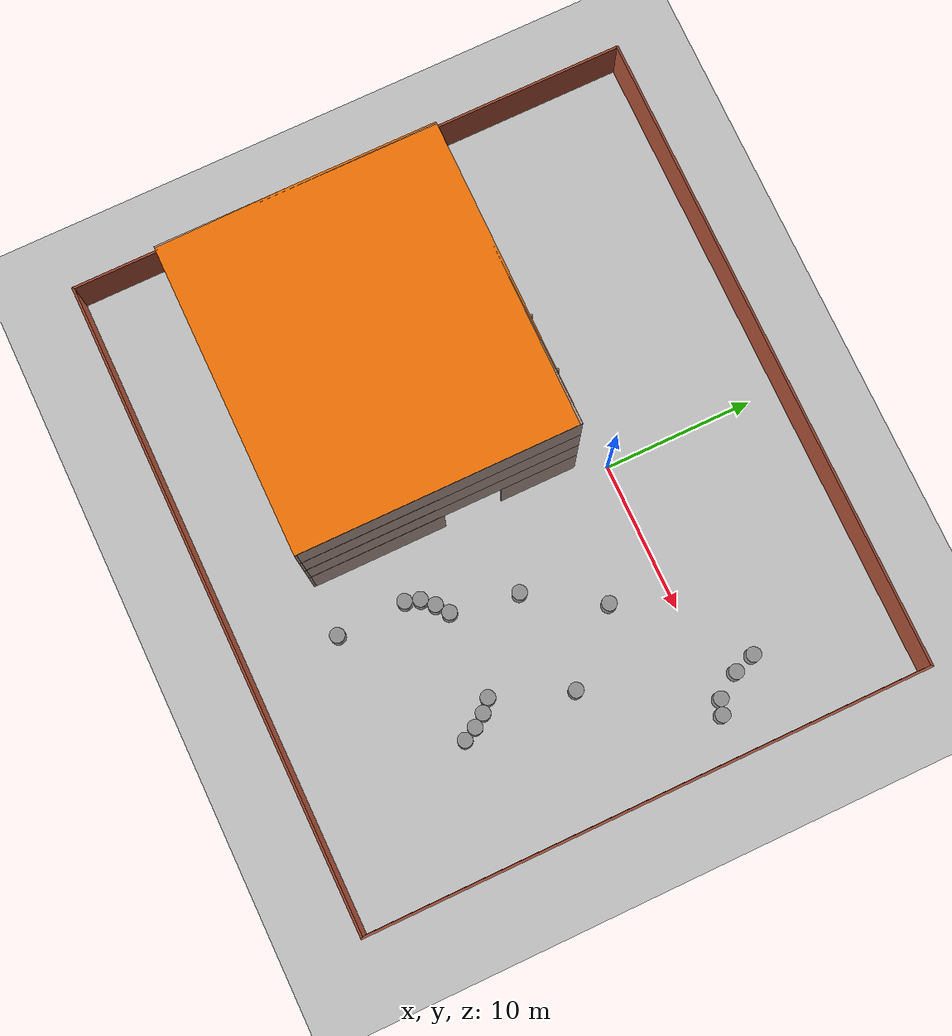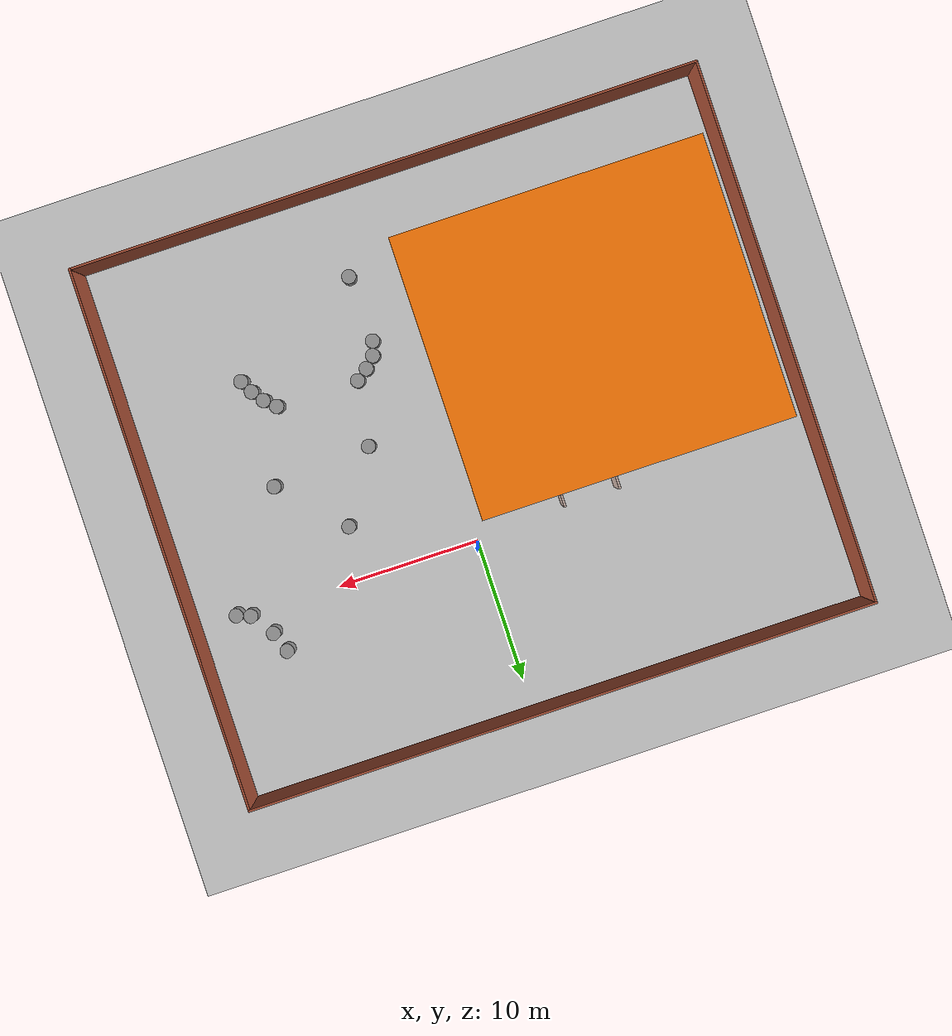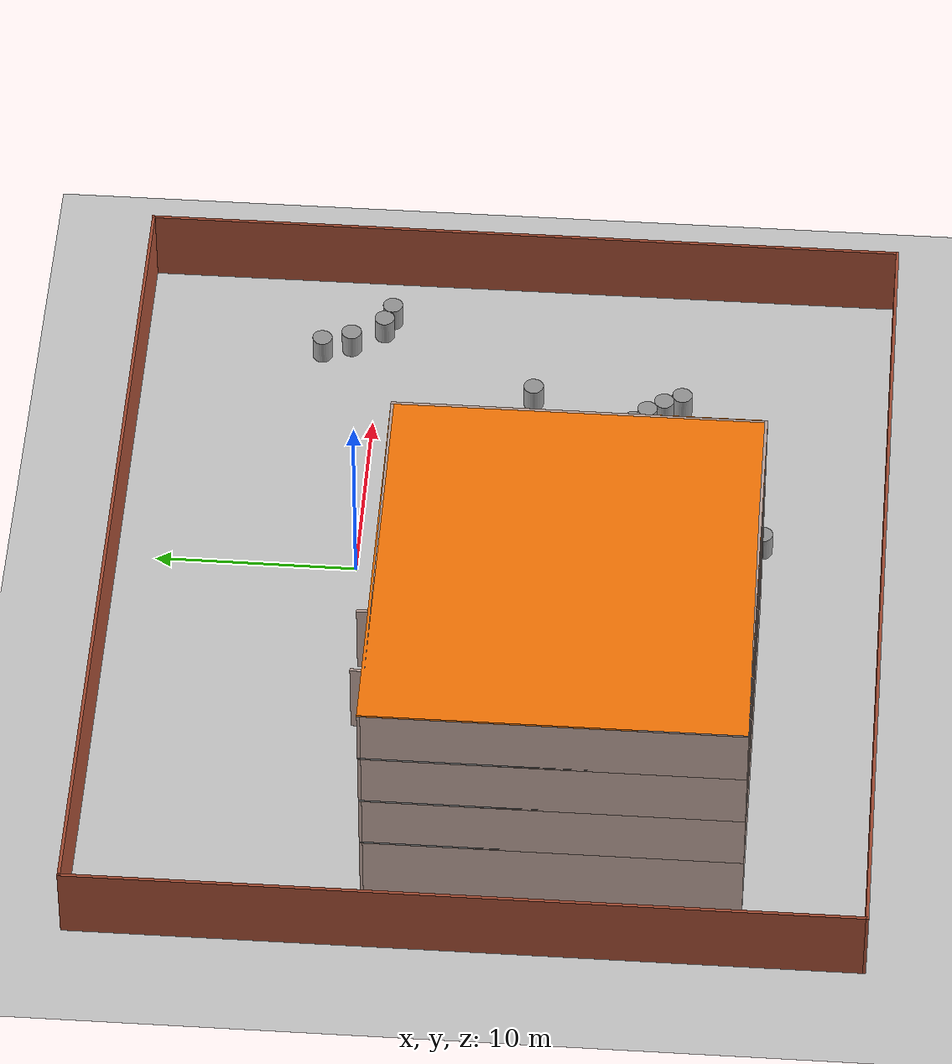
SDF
<sdf version="1.6">
 <world name="default">
  <light name="sun" type="directional">
   <pose>0 0 10 0 -0 0</pose>
   <diffuse>0.8 0.8 0.8 1</diffuse>
   <specular>0.2 0.2 0.2 1</specular>
   <attenuation>
    <range>1000</range>
    <constant>0.9</constant>
    <linear>0.01</linear>
    <quadratic>0.001</quadratic>
   </attenuation>
   <direction>-0.5 0.1 -0.9</direction>
  </light>
  <model name="ground_plane">
   <static>1</static>
   <link name="link">
    <collision name="collision">
     <geometry><plane><normal>0 0 1</normal><size>100 100</size></plane></geometry>
     <surface><friction><ode><mu>100</mu><mu2>50</mu2></ode></friction></surface>
    </collision>
    <visual name="visual">
     <cast_shadows>0</cast_shadows>
     <geometry><plane><normal>0 0 1</normal><size>100 100</size></plane></geometry>
     <material>
      <script><uri>file://media/materials/scripts/gazebo.material</uri><name>Gazebo/Grey</name></script>
     </material>
    </visual>
   </link>
  </model>
  <gravity>0 0 -9.8</gravity>
  <magnetic_field>6e-06 2.3e-05 -4.2e-05</magnetic_field>
  <atmosphere type="adiabatic"/>
  <physics name="default_physics" default="0" type="ode">
   <max_step_size>0.001</max_step_size>
   <real_time_factor>1</real_time_factor>
   <real_time_update_rate>1000</real_time_update_rate>
  </physics>
  <scene><ambient>0.4 0.4 0.4 1</ambient><background>0.7 0.7 0.7 1</background><shadows>1</shadows></scene>
  <audio><device>default</device></audio>
  <spherical_coordinates>
   <surface_model>EARTH_WGS84</surface_model>
   <latitude_deg>0</latitude_deg>
   <longitude_deg>0</longitude_deg>
   <elevation>0</elevation>
   <heading_deg>0</heading_deg>
  </spherical_coordinates>
  <model name="building2">
   <pose>-11 -10.325 0 0 -0 0</pose>
   <link name="Floor_0">
    <collision name="Floor_0_Collision">
     <geometry><box><size>20.15 18.15 0.1</size></box></geometry>
     <pose>0 0 0.05 0 -0 0</pose>
    </collision>
    <visual name="Floor_0_Visual">
     <pose>0 0 0.05 0 -0 0</pose>
     <geometry><box><size>20.15 18.15 0.1</size></box></geometry>
     <material>
      <script><uri>file://media/materials/scripts/gazebo.material</uri><name>Gazebo/Grey</name></script>
      <ambient>1 1 1 1</ambient>
     </material>
     <meta><layer>1</layer></meta>
    </visual>
    <pose>-0 -0.675 4 0 -0 0</pose>
   </link>
   <link name="Floor_2">
    <collision name="Floor_2_Collision">
     <geometry><box><size>20.15 18.15 0.1</size></box></geometry>
     <pose>0 0 0.05 0 -0 0</pose>
    </collision>
    <visual name="Floor_2_Visual">
     <pose>0 0 0.05 0 -0 0</pose>
     <geometry><box><size>20.15 18.15 0.1</size></box></geometry>
     <material>
      <script><uri>file://media/materials/scripts/gazebo.material</uri><name>Gazebo/Grey</name></script>
      <ambient>1 1 1 1</ambient>
     </material>
     <meta><layer>2</layer></meta>
    </visual>
    <pose>-0 -0.675 7 0 -0 0</pose>
   </link>
   <link name="Floor_3">
    <collision name="Floor_3_Collision">
     <geometry><box><size>20.15 18.15 0.1</size></box></geometry>
     <pose>0 0 0.05 0 -0 0</pose>
    </collision>
    <visual name="Floor_3_Visual">
     <pose>0 0 0.05 0 -0 0</pose>
     <geometry><box><size>20.15 18.15 0.1</size></box></geometry>
     <material>
      <script><uri>file://media/materials/scripts/gazebo.material</uri><name>Gazebo/Grey</name></script>
      <ambient>1 1 1 1</ambient>
     </material>
     <meta><layer>3</layer></meta>
    </visual>
    <pose>-0 -0.675 10 0 -0 0</pose>
   </link>
   <link name="Floor_8">
    <collision name="Floor_8_Collision">
     <geometry><box><size>20.15 18.15 0.1</size></box></geometry>
     <pose>0 0 0.05 0 -0 0</pose>
    </collision>
    <visual name="Floor_8_Visual">
     <pose>0 0 0.05 0 -0 0</pose>
     <geometry><box><size>20.15 18.15 0.1</size></box></geometry>
     <material>
      <script><uri>file://media/materials/scripts/gazebo.material</uri><name>Gazebo/Grey</name></script>
      <ambient>0.996078 0.47451 0.0196078 1</ambient>
     </material>
     <meta><layer>4</layer></meta>
    </visual>
    <pose>-0 -0.675 13 0 -0 0</pose>
   </link>
   <link name="Wall_11">
    <collision name="Wall_11_Collision">
     <geometry><box><size>1.5 0.15 4</size></box></geometry>
     <pose>0 0 2 0 -0 0</pose>
    </collision>
    <visual name="Wall_11_Visual">
     <pose>0 0 2 0 -0 0</pose>
     <geometry><box><size>1.5 0.15 4</size></box></geometry>
     <material>
      <script><uri>file://media/materials/scripts/gazebo.material</uri><name>Gazebo/Grey</name></script>
      <ambient>0.760784 0.662745 0.627451 1</ambient>
     </material>
     <meta><layer>0</layer></meta>
    </visual>
    <pose>0.8 9 0 0 -0 -1.5708</pose>
   </link>
   <link name="Wall_12">
    <collision name="Wall_12_Collision">
     <geometry><box><size>10.95 0.15 4</size></box></geometry>
     <pose>0 0 2 0 -0 0</pose>
    </collision>
    <visual name="Wall_12_Visual">
     <pose>0 0 2 0 -0 0</pose>
     <geometry><box><size>10.95 0.15 4</size></box></geometry>
     <material>
      <script><uri>file://media/materials/scripts/gazebo.material</uri><name>Gazebo/Grey</name></script>
      <ambient>0.760784 0.662745 0.627451 1</ambient>
     </material>
     <meta><layer>0</layer></meta>
    </visual>
    <pose>-4.6 8.325 0 0 -0 3.14159</pose>
   </link>
   <link name="Wall_14">
    <collision name="Wall_14_Collision">
     <geometry><box><size>18.15 0.15 4</size></box></geometry>
     <pose>0 0 2 0 -0 0</pose>
    </collision>
    <visual name="Wall_14_Visual">
     <pose>0 0 2 0 -0 0</pose>
     <geometry><box><size>18.15 0.15 4</size></box></geometry>
     <material>
      <script><uri>file://media/materials/scripts/gazebo.material</uri><name>Gazebo/Grey</name></script>
      <ambient>0.760784 0.662745 0.627451 1</ambient>
     </material>
     <meta><layer>0</layer></meta>
    </visual>
    <pose>-10 -0.675 0 0 -0 -1.5708</pose>
   </link>
   <link name="Wall_16">
    <collision name="Wall_16_Collision">
     <geometry><box><size>20.15 0.15 4</size></box></geometry>
     <pose>0 0 2 0 -0 0</pose>
    </collision>
    <visual name="Wall_16_Visual">
     <pose>0 0 2 0 -0 0</pose>
     <geometry><box><size>20.15 0.15 4</size></box></geometry>
     <material>
      <script><uri>file://media/materials/scripts/gazebo.material</uri><name>Gazebo/Grey</name></script>
      <ambient>0.760784 0.662745 0.627451 1</ambient>
     </material>
     <meta><layer>0</layer></meta>
    </visual>
    <pose>-0 -9.675 0 0 -0 0</pose>
   </link>
   <link name="Wall_24">
    <collision name="Wall_24_Collision">
     <geometry><box><size>18.15 0.15 3</size></box></geometry>
     <pose>0 0 1.5 0 -0 0</pose>
    </collision>
    <visual name="Wall_24_Visual">
     <pose>0 0 1.5 0 -0 0</pose>
     <geometry><box><size>18.15 0.15 3</size></box></geometry>
     <material>
      <script><uri>file://media/materials/scripts/gazebo.material</uri><name>Gazebo/Grey</name></script>
      <ambient>0.760784 0.662745 0.627451 1</ambient>
     </material>
     <meta><layer>1</layer></meta>
    </visual>
    <pose>-10 -0.675 4 0 -0 -1.5708</pose>
   </link>
   <link name="Wall_25">
    <collision name="Wall_25_Collision">
     <geometry><box><size>20.15 0.15 3</size></box></geometry>
     <pose>0 0 1.5 0 -0 0</pose>
    </collision>
    <visual name="Wall_25_Visual">
     <pose>0 0 1.5 0 -0 0</pose>
     <geometry><box><size>20.15 0.15 3</size></box></geometry>
     <material>
      <script><uri>file://media/materials/scripts/gazebo.material</uri><name>Gazebo/Grey</name></script>
      <ambient>0.760784 0.662745 0.627451 1</ambient>
     </material>
     <meta><layer>1</layer></meta>
    </visual>
    <pose>-0 -9.675 4 0 -0 0</pose>
   </link>
   <link name="Wall_31">
    <collision name="Wall_31_Collision">
     <geometry><box><size>20.15 0.15 3</size></box></geometry>
     <pose>0 0 1.5 0 -0 0</pose>
    </collision>
    <visual name="Wall_31_Visual">
     <pose>0 0 1.5 0 -0 0</pose>
     <geometry><box><size>20.15 0.15 3</size></box></geometry>
     <material>
      <script><uri>file://media/materials/scripts/gazebo.material</uri><name>Gazebo/Grey</name></script>
      <ambient>0.760784 0.662745 0.627451 1</ambient>
     </material>
     <meta><layer>1</layer></meta>
    </visual>
    <pose>-0 8.325 4 0 -0 0</pose>
   </link>
   <link name="Wall_33">
    <collision name="Wall_33_Collision">
     <geometry><box><size>18 0.15 3</size></box></geometry>
     <pose>0 0 1.5 0 -0 0</pose>
    </collision>
    <visual name="Wall_33_Visual">
     <pose>0 0 1.5 0 -0 0</pose>
     <geometry><box><size>18 0.15 3</size></box></geometry>
     <material>
      <script><uri>file://media/materials/scripts/gazebo.material</uri><name>Gazebo/Grey</name></script>
      <ambient>0.760784 0.662745 0.627451 1</ambient>
     </material>
     <meta><layer>1</layer></meta>
    </visual>
    <pose>10 -0.6 4 0 -0 -1.5708</pose>
   </link>
   <link name="Wall_4">
    <collision name="Wall_4_Collision">
     <geometry><box><size>5.15 0.15 4</size></box></geometry>
     <pose>0 0 2 0 -0 0</pose>
    </collision>
    <visual name="Wall_4_Visual">
     <pose>0 0 2 0 -0 0</pose>
     <geometry><box><size>5.15 0.15 4</size></box></geometry>
     <material>
      <script><uri>file://media/materials/scripts/gazebo.material</uri><name>Gazebo/Grey</name></script>
      <ambient>0.760784 0.662745 0.627451 1</ambient>
     </material>
     <meta><layer>0</layer></meta>
    </visual>
    <pose>10 5.825 0 0 -0 -1.5708</pose>
   </link>
   <link name="Wall_42">
    <collision name="Wall_42_Collision">
     <geometry><box><size>18.15 0.15 3</size></box></geometry>
     <pose>0 0 1.5 0 -0 0</pose>
    </collision>
    <visual name="Wall_42_Visual">
     <pose>0 0 1.5 0 -0 0</pose>
     <geometry><box><size>18.15 0.15 3</size></box></geometry>
     <material>
      <script><uri>file://media/materials/scripts/gazebo.material</uri><name>Gazebo/Grey</name></script>
      <ambient>0.760784 0.662745 0.627451 1</ambient>
     </material>
     <meta><layer>2</layer></meta>
    </visual>
    <pose>-10 -0.675 7 0 -0 -1.5708</pose>
   </link>
   <link name="Wall_43">
    <collision name="Wall_43_Collision">
     <geometry><box><size>20.15 0.15 3</size></box></geometry>
     <pose>0 0 1.5 0 -0 0</pose>
    </collision>
    <visual name="Wall_43_Visual">
     <pose>0 0 1.5 0 -0 0</pose>
     <geometry><box><size>20.15 0.15 3</size></box></geometry>
     <material>
      <script><uri>file://media/materials/scripts/gazebo.material</uri><name>Gazebo/Grey</name></script>
      <ambient>0.760784 0.662745 0.627451 1</ambient>
     </material>
     <meta><layer>2</layer></meta>
    </visual>
    <pose>-0 -9.675 7 0 -0 0</pose>
   </link>
   <link name="Wall_44">
    <collision name="Wall_44_Collision">
     <geometry><box><size>20.15 0.15 3</size></box></geometry>
     <pose>0 0 1.5 0 -0 0</pose>
    </collision>
    <visual name="Wall_44_Visual">
     <pose>0 0 1.5 0 -0 0</pose>
     <geometry><box><size>20.15 0.15 3</size></box></geometry>
     <material>
      <script><uri>file://media/materials/scripts/gazebo.material</uri><name>Gazebo/Grey</name></script>
      <ambient>0.760784 0.662745 0.627451 1</ambient>
     </material>
     <meta><layer>2</layer></meta>
    </visual>
    <pose>-0 8.325 7 0 -0 0</pose>
   </link>
   <link name="Wall_45">
    <collision name="Wall_45_Collision">
     <geometry><box><size>18 0.15 3</size></box></geometry>
     <pose>0 0 1.5 0 -0 0</pose>
    </collision>
    <visual name="Wall_45_Visual">
     <pose>0 0 1.5 0 -0 0</pose>
     <geometry><box><size>18 0.15 3</size></box></geometry>
     <material>
      <script><uri>file://media/materials/scripts/gazebo.material</uri><name>Gazebo/Grey</name></script>
      <ambient>0.760784 0.662745 0.627451 1</ambient>
     </material>
     <meta><layer>2</layer></meta>
    </visual>
    <pose>10 -0.6 7 0 -0 -1.5708</pose>
   </link>
   <link name="Wall_46">
    <collision name="Wall_46_Collision">
     <geometry><box><size>18.15 0.15 3</size></box></geometry>
     <pose>0 0 1.5 0 -0 0</pose>
    </collision>
    <visual name="Wall_46_Visual">
     <pose>0 0 1.5 0 -0 0</pose>
     <geometry><box><size>18.15 0.15 3</size></box></geometry>
     <material>
      <script><uri>file://media/materials/scripts/gazebo.material</uri><name>Gazebo/Grey</name></script>
      <ambient>0.760784 0.662745 0.627451 1</ambient>
     </material>
     <meta><layer>3</layer></meta>
    </visual>
    <pose>-10 -0.675 10 0 -0 -1.5708</pose>
   </link>
   <link name="Wall_47">
    <collision name="Wall_47_Collision">
     <geometry><box><size>20.15 0.15 3</size></box></geometry>
     <pose>0 0 1.5 0 -0 0</pose>
    </collision>
    <visual name="Wall_47_Visual">
     <pose>0 0 1.5 0 -0 0</pose>
     <geometry><box><size>20.15 0.15 3</size></box></geometry>
     <material>
      <script><uri>file://media/materials/scripts/gazebo.material</uri><name>Gazebo/Grey</name></script>
      <ambient>0.760784 0.662745 0.627451 1</ambient>
     </material>
     <meta><layer>3</layer></meta>
    </visual>
    <pose>-0 -9.675 10 0 -0 0</pose>
   </link>
   <link name="Wall_48">
    <collision name="Wall_48_Collision">
     <geometry><box><size>20.15 0.15 3</size></box></geometry>
     <pose>0 0 1.5 0 -0 0</pose>
    </collision>
    <visual name="Wall_48_Visual">
     <pose>0 0 1.5 0 -0 0</pose>
     <geometry><box><size>20.15 0.15 3</size></box></geometry>
     <material>
      <script><uri>file://media/materials/scripts/gazebo.material</uri><name>Gazebo/Grey</name></script>
      <ambient>0.760784 0.662745 0.627451 1</ambient>
     </material>
     <meta><layer>3</layer></meta>
    </visual>
    <pose>-0 8.325 10 0 -0 0</pose>
   </link>
   <link name="Wall_49">
    <collision name="Wall_49_Collision">
     <geometry><box><size>18 0.15 3</size></box></geometry>
     <pose>0 0 1.5 0 -0 0</pose>
    </collision>
    <visual name="Wall_49_Visual">
     <pose>0 0 1.5 0 -0 0</pose>
     <geometry><box><size>18 0.15 3</size></box></geometry>
     <material>
      <script><uri>file://media/materials/scripts/gazebo.material</uri><name>Gazebo/Grey</name></script>
      <ambient>0.760784 0.662745 0.627451 1</ambient>
     </material>
     <meta><layer>3</layer></meta>
    </visual>
    <pose>10 -0.6 10 0 -0 -1.5708</pose>
   </link>
   <link name="Wall_6">
    <collision name="Wall_6_Collision">
     <geometry><box><size>9.15 0.15 4</size></box></geometry>
     <pose>0 0 2 0 -0 0</pose>
    </collision>
    <visual name="Wall_6_Visual">
     <pose>0 0 2 0 -0 0</pose>
     <geometry><box><size>9.15 0.15 4</size></box></geometry>
     <material>
      <script><uri>file://media/materials/scripts/gazebo.material</uri><name>Gazebo/Grey</name></script>
      <ambient>0.760784 0.662745 0.627451 1</ambient>
     </material>
     <meta><layer>0</layer></meta>
    </visual>
    <pose>10 -5.175 0 0 -0 -1.5708</pose>
   </link>
   <link name="Wall_76">
    <collision name="Wall_76_Collision">
     <geometry><box><size>18.15 0.15 0.1</size></box></geometry>
     <pose>0 0 0.05 0 -0 0</pose>
    </collision>
    <visual name="Wall_76_Visual">
     <pose>0 0 0.05 0 -0 0</pose>
     <geometry><box><size>18.15 0.15 0.1</size></box></geometry>
     <material>
      <script><uri>file://media/materials/scripts/gazebo.material</uri><name>Gazebo/Grey</name></script>
      <ambient>0.760784 0.662745 0.627451 1</ambient>
     </material>
     <meta><layer>4</layer></meta>
    </visual>
    <pose>-10 -0.675 13 0 -0 -1.5708</pose>
   </link>
   <link name="Wall_77">
    <collision name="Wall_77_Collision">
     <geometry><box><size>20.15 0.15 0.1</size></box></geometry>
     <pose>0 0 0.05 0 -0 0</pose>
    </collision>
    <visual name="Wall_77_Visual">
     <pose>0 0 0.05 0 -0 0</pose>
     <geometry><box><size>20.15 0.15 0.1</size></box></geometry>
     <material>
      <script><uri>file://media/materials/scripts/gazebo.material</uri><name>Gazebo/Grey</name></script>
      <ambient>0.760784 0.662745 0.627451 1</ambient>
     </material>
     <meta><layer>4</layer></meta>
    </visual>
    <pose>-0 -9.675 13 0 -0 0</pose>
   </link>
   <link name="Wall_78">
    <collision name="Wall_78_Collision">
     <geometry><box><size>20.15 0.15 0.1</size></box></geometry>
     <pose>0 0 0.05 0 -0 0</pose>
    </collision>
    <visual name="Wall_78_Visual">
     <pose>0 0 0.05 0 -0 0</pose>
     <geometry><box><size>20.15 0.15 0.1</size></box></geometry>
     <material>
      <script><uri>file://media/materials/scripts/gazebo.material</uri><name>Gazebo/Grey</name></script>
      <ambient>0.760784 0.662745 0.627451 1</ambient>
     </material>
     <meta><layer>4</layer></meta>
    </visual>
    <pose>-0 8.325 13 0 -0 0</pose>
   </link>
   <link name="Wall_79">
    <collision name="Wall_79_Collision">
     <geometry><box><size>18 0.15 0.1</size></box></geometry>
     <pose>0 0 0.05 0 -0 0</pose>
    </collision>
    <visual name="Wall_79_Visual">
     <pose>0 0 0.05 0 -0 0</pose>
     <geometry><box><size>18 0.15 0.1</size></box></geometry>
     <material>
      <script><uri>file://media/materials/scripts/gazebo.material</uri><name>Gazebo/Grey</name></script>
      <ambient>0.760784 0.662745 0.627451 1</ambient>
     </material>
     <meta><layer>4</layer></meta>
    </visual>
    <pose>10 -0.6 13 0 -0 -1.5708</pose>
   </link>
   <link name="Wall_8">
    <collision name="Wall_8_Collision">
     <geometry><box><size>5.5 0.15 4</size></box></geometry>
     <pose>0 0 2 0 -0 0</pose>
    </collision>
    <visual name="Wall_8_Visual">
     <pose>0 0 2 0 -0 0</pose>
     <geometry><box><size>5.5 0.15 4</size></box></geometry>
     <material>
      <script><uri>file://media/materials/scripts/gazebo.material</uri><name>Gazebo/Grey</name></script>
      <ambient>0.760784 0.662745 0.627451 1</ambient>
     </material>
     <meta><layer>0</layer></meta>
    </visual>
    <pose>7.325 8.325 0 0 -0 3.14159</pose>
   </link>
   <link name="Wall_9">
    <collision name="Wall_9_Collision">
     <geometry><box><size>1.5 0.15 4</size></box></geometry>
     <pose>0 0 2 0 -0 0</pose>
    </collision>
    <visual name="Wall_9_Visual">
     <pose>0 0 2 0 -0 0</pose>
     <geometry><box><size>1.5 0.15 4</size></box></geometry>
     <material>
      <script><uri>file://media/materials/scripts/gazebo.material</uri><name>Gazebo/Grey</name></script>
      <ambient>0.760784 0.662745 0.627451 1</ambient>
     </material>
     <meta><layer>0</layer></meta>
    </visual>
    <pose>4.65 9 0 0 -0 1.5708</pose>
   </link>
   <static>1</static>
  </model>
  <model name="wall11">
   <pose>-2 -7 0 0 -0 0</pose>
   <link name="Wall_0">
    <collision name="Wall_0_Collision">
     <geometry><box><size>44.15 0.15 4</size></box></geometry>
     <pose>0 0 2 0 -0 0</pose>
    </collision>
    <visual name="Wall_0_Visual">
     <pose>0 0 2 0 -0 0</pose>
     <geometry><box><size>44.15 0.15 4</size></box></geometry>
     <material>
      <script><uri>file://media/materials/scripts/gazebo.material</uri><name>Gazebo/Bricks</name></script>
      <ambient>1 1 1 1</ambient>
     </material>
     <meta><layer>0</layer></meta>
    </visual>
    <pose>0 19 0 0 -0 0</pose>
   </link>
   <link name="Wall_2">
    <collision name="Wall_2_Collision">
     <geometry><box><size>38.15 0.15 4</size></box></geometry>
     <pose>0 0 2 0 -0 0</pose>
    </collision>
    <visual name="Wall_2_Visual">
     <pose>0 0 2 0 -0 0</pose>
     <geometry><box><size>38.15 0.15 4</size></box></geometry>
     <material>
      <script><uri>file://media/materials/scripts/gazebo.material</uri><name>Gazebo/Bricks</name></script>
      <ambient>1 1 1 1</ambient>
     </material>
     <meta><layer>0</layer></meta>
    </visual>
    <pose>22 0 0 0 -0 -1.5708</pose>
   </link>
   <link name="Wall_4">
    <collision name="Wall_4_Collision">
     <geometry><box><size>44.15 0.15 4</size></box></geometry>
     <pose>0 0 2 0 -0 0</pose>
    </collision>
    <visual name="Wall_4_Visual">
     <pose>0 0 2 0 -0 0</pose>
     <geometry><box><size>44.15 0.15 4</size></box></geometry>
     <material>
      <script><uri>file://media/materials/scripts/gazebo.material</uri><name>Gazebo/Bricks</name></script>
      <ambient>1 1 1 1</ambient>
     </material>
     <meta><layer>0</layer></meta>
    </visual>
    <pose>0 -19 0 0 -0 3.14159</pose>
   </link>
   <link name="Wall_6">
    <collision name="Wall_6_Collision">
     <geometry><box><size>38.15 0.15 4</size></box></geometry>
     <pose>0 0 2 0 -0 0</pose>
    </collision>
    <visual name="Wall_6_Visual">
     <pose>0 0 2 0 -0 0</pose>
     <geometry><box><size>38.15 0.15 4</size></box></geometry>
     <material>
      <script><uri>file://media/materials/scripts/gazebo.material</uri><name>Gazebo/Bricks</name></script>
      <ambient>1 1 1 1</ambient>
     </material>
     <meta><layer>0</layer></meta>
    </visual>
    <pose>-22 0 0 0 -0 1.5708</pose>
   </link>
   <static>1</static>
  </model>
  <model name="cylinder1.5m">
   <link name="link">
    <inertial>
     <mass>1</mass>
     <inertia><ixx>0.145833</ixx><ixy>0</ixy><ixz>0</ixz><iyy>0.145833</iyy><iyz>0</iyz><izz>0.125</izz></inertia>
    </inertial>
    <pose>0 0 0.25 0 -0 0</pose>
    <visual name="visual">
     <geometry><cylinder><radius>0.5</radius><length>1.5</length></cylinder></geometry>
     <material>
      <script><name>Gazebo/Grey</name><uri>file://media/materials/scripts/gazebo.material</uri></script>
      <shader type="pixel"><normal_map>__default__</normal_map></shader>
      <ambient>0.3 0.3 0.3 1</ambient>
      <diffuse>0.7 0.7 0.7 1</diffuse>
      <specular>0.01 0.01 0.01 1</specular>
      <emissive>0 0 0 1</emissive>
     </material>
    </visual>
    <collision name="collision">
     <geometry><cylinder><radius>0.5</radius><length>1</length></cylinder></geometry>
     <surface>
      <friction>
       <ode><mu>1</mu><mu2>1</mu2><fdir1>0 0 0</fdir1><slip1>0</slip1><slip2>0</slip2></ode>
       <torsional>
        <coefficient>1</coefficient>
        <patch_radius>0</patch_radius>
        <surface_radius>0</surface_radius>
        <use_patch_radius>1</use_patch_radius>
        <ode><slip>0</slip></ode>
       </torsional>
      </friction>
      <bounce><restitution_coefficient>0</restitution_coefficient><threshold>1e+06</threshold></bounce>
      <contact>
       <collide_without_contact>0</collide_without_contact>
       <collide_without_contact_bitmask>1</collide_without_contact_bitmask>
       <collide_bitmask>1</collide_bitmask>
       <ode>
        <soft_cfm>0</soft_cfm>
        <soft_erp>0.2</soft_erp>
        <kp>1e+13</kp>
        <kd>1</kd>
        <max_vel>0.01</max_vel>
        <min_depth>0</min_depth>
       </ode>
       <bullet>
        <split_impulse>1</split_impulse>
        <split_impulse_penetration_threshold>-0.01</split_impulse_penetration_threshold>
        <soft_cfm>0</soft_cfm>
        <soft_erp>0.2</soft_erp>
        <kp>1e+13</kp>
        <kd>1</kd>
       </bullet>
      </contact>
     </surface>
    </collision>
   </link>
   <static>0</static>
   <pose>2.61988 -20 0.25 0 -0 0</pose>
  </model>
  <model name="cylinder1.5m_clone_2">
   <link name="link">
    <inertial>
     <mass>1</mass>
     <inertia><ixx>0.145833</ixx><ixy>0</ixy><ixz>0</ixz><iyy>0.145833</iyy><iyz>0</iyz><izz>0.125</izz></inertia>
    </inertial>
    <pose>0 0 0.25 0 -0 0</pose>
    <visual name="visual">
     <geometry><cylinder><radius>0.5</radius><length>1.5</length></cylinder></geometry>
     <material>
      <script><name>Gazebo/Grey</name><uri>file://media/materials/scripts/gazebo.material</uri></script>
      <shader type="pixel"><normal_map>__default__</normal_map></shader>
      <ambient>0.3 0.3 0.3 1</ambient>
      <diffuse>0.7 0.7 0.7 1</diffuse>
      <specular>0.01 0.01 0.01 1</specular>
      <emissive>0 0 0 1</emissive>
     </material>
    </visual>
    <collision name="collision">
     <geometry><cylinder><radius>0.5</radius><length>1</length></cylinder></geometry>
     <surface>
      <friction>
       <ode><mu>1</mu><mu2>1</mu2><fdir1>0 0 0</fdir1><slip1>0</slip1><slip2>0</slip2></ode>
       <torsional>
        <coefficient>1</coefficient>
        <patch_radius>0</patch_radius>
        <surface_radius>0</surface_radius>
        <use_patch_radius>1</use_patch_radius>
        <ode><slip>0</slip></ode>
       </torsional>
      </friction>
      <bounce><restitution_coefficient>0</restitution_coefficient><threshold>1e+06</threshold></bounce>
      <contact>
       <collide_without_contact>0</collide_without_contact>
       <collide_without_contact_bitmask>1</collide_without_contact_bitmask>
       <collide_bitmask>1</collide_bitmask>
       <ode>
        <soft_cfm>0</soft_cfm>
        <soft_erp>0.2</soft_erp>
        <kp>1e+13</kp>
        <kd>1</kd>
        <max_vel>0.01</max_vel>
        <min_depth>0</min_depth>
       </ode>
       <bullet>
        <split_impulse>1</split_impulse>
        <split_impulse_penetration_threshold>-0.01</split_impulse_penetration_threshold>
        <soft_cfm>0</soft_cfm>
        <soft_erp>0.2</soft_erp>
        <kp>1e+13</kp>
        <kd>1</kd>
       </bullet>
      </contact>
     </surface>
    </collision>
   </link>
   <static>0</static>
   <pose>12 -8 0.249996 -2e-06 -2e-06 0</pose>
  </model>
  <model name="cylinder1.5m_clone_3">
   <link name="link">
    <inertial>
     <mass>1</mass>
     <inertia><ixx>0.145833</ixx><ixy>0</ixy><ixz>0</ixz><iyy>0.145833</iyy><iyz>0</iyz><izz>0.125</izz></inertia>
    </inertial>
    <pose>0 0 0.25 0 -0 0</pose>
    <visual name="visual">
     <geometry><cylinder><radius>0.5</radius><length>1.5</length></cylinder></geometry>
     <material>
      <script><name>Gazebo/Grey</name><uri>file://media/materials/scripts/gazebo.material</uri></script>
      <shader type="pixel"><normal_map>__default__</normal_map></shader>
      <ambient>0.3 0.3 0.3 1</ambient>
      <diffuse>0.7 0.7 0.7 1</diffuse>
      <specular>0.01 0.01 0.01 1</specular>
      <emissive>0 0 0 1</emissive>
     </material>
    </visual>
    <collision name="collision">
     <geometry><cylinder><radius>0.5</radius><length>1</length></cylinder></geometry>
     <surface>
      <friction>
       <ode><mu>1</mu><mu2>1</mu2><fdir1>0 0 0</fdir1><slip1>0</slip1><slip2>0</slip2></ode>
       <torsional>
        <coefficient>1</coefficient>
        <patch_radius>0</patch_radius>
        <surface_radius>0</surface_radius>
        <use_patch_radius>1</use_patch_radius>
        <ode><slip>0</slip></ode>
       </torsional>
      </friction>
      <bounce><restitution_coefficient>0</restitution_coefficient><threshold>1e+06</threshold></bounce>
      <contact>
       <collide_without_contact>0</collide_without_contact>
       <collide_without_contact_bitmask>1</collide_without_contact_bitmask>
       <collide_bitmask>1</collide_bitmask>
       <ode>
        <soft_cfm>0</soft_cfm>
        <soft_erp>0.2</soft_erp>
        <kp>1e+13</kp>
        <kd>1</kd>
        <max_vel>0.01</max_vel>
        <min_depth>0</min_depth>
       </ode>
       <bullet>
        <split_impulse>1</split_impulse>
        <split_impulse_penetration_threshold>-0.01</split_impulse_penetration_threshold>
        <soft_cfm>0</soft_cfm>
        <soft_erp>0.2</soft_erp>
        <kp>1e+13</kp>
        <kd>1</kd>
       </bullet>
      </contact>
     </surface>
    </collision>
   </link>
   <static>0</static>
   <pose>2.45861 -15.3265 0.25 0 -0 0.003835</pose>
  </model>
  <model name="cylinder1.5m_clone_4">
   <link name="link">
    <inertial>
     <mass>1</mass>
     <inertia><ixx>0.145833</ixx><ixy>0</ixy><ixz>0</ixz><iyy>0.145833</iyy><iyz>0</iyz><izz>0.125</izz></inertia>
    </inertial>
    <pose>0 0 0.25 0 -0 0</pose>
    <visual name="visual">
     <geometry><cylinder><radius>0.5</radius><length>1.5</length></cylinder></geometry>
     <material>
      <script><name>Gazebo/Grey</name><uri>file://media/materials/scripts/gazebo.material</uri></script>
      <shader type="pixel"><normal_map>__default__</normal_map></shader>
      <ambient>0.3 0.3 0.3 1</ambient>
      <diffuse>0.7 0.7 0.7 1</diffuse>
      <specular>0.01 0.01 0.01 1</specular>
      <emissive>0 0 0 1</emissive>
     </material>
    </visual>
    <collision name="collision">
     <geometry><cylinder><radius>0.5</radius><length>1</length></cylinder></geometry>
     <surface>
      <friction>
       <ode><mu>1</mu><mu2>1</mu2><fdir1>0 0 0</fdir1><slip1>0</slip1><slip2>0</slip2></ode>
       <torsional>
        <coefficient>1</coefficient>
        <patch_radius>0</patch_radius>
        <surface_radius>0</surface_radius>
        <use_patch_radius>1</use_patch_radius>
        <ode><slip>0</slip></ode>
       </torsional>
      </friction>
      <bounce><restitution_coefficient>0</restitution_coefficient><threshold>1e+06</threshold></bounce>
      <contact>
       <collide_without_contact>0</collide_without_contact>
       <collide_without_contact_bitmask>1</collide_without_contact_bitmask>
       <collide_bitmask>1</collide_bitmask>
       <ode>
        <soft_cfm>0</soft_cfm>
        <soft_erp>0.2</soft_erp>
        <kp>1e+13</kp>
        <kd>1</kd>
        <max_vel>0.01</max_vel>
        <min_depth>0</min_depth>
       </ode>
       <bullet>
        <split_impulse>1</split_impulse>
        <split_impulse_penetration_threshold>-0.01</split_impulse_penetration_threshold>
        <soft_cfm>0</soft_cfm>
        <soft_erp>0.2</soft_erp>
        <kp>1e+13</kp>
        <kd>1</kd>
       </bullet>
      </contact>
     </surface>
    </collision>
   </link>
   <static>0</static>
   <pose>2.76567 -14.3731 0.25 0 -0 0.004667</pose>
  </model>
  <model name="cylinder1.5m_clone_5">
   <link name="link">
    <inertial>
     <mass>1</mass>
     <inertia><ixx>0.145833</ixx><ixy>0</ixy><ixz>0</ixz><iyy>0.145833</iyy><iyz>0</iyz><izz>0.125</izz></inertia>
    </inertial>
    <pose>0 0 0.25 0 -0 0</pose>
    <visual name="visual">
     <geometry><cylinder><radius>0.5</radius><length>1.5</length></cylinder></geometry>
     <material>
      <script><name>Gazebo/Grey</name><uri>file://media/materials/scripts/gazebo.material</uri></script>
      <shader type="pixel"><normal_map>__default__</normal_map></shader>
      <ambient>0.3 0.3 0.3 1</ambient>
      <diffuse>0.7 0.7 0.7 1</diffuse>
      <specular>0.01 0.01 0.01 1</specular>
      <emissive>0 0 0 1</emissive>
     </material>
    </visual>
    <collision name="collision">
     <geometry><cylinder><radius>0.5</radius><length>1</length></cylinder></geometry>
     <surface>
      <friction>
       <ode><mu>1</mu><mu2>1</mu2><fdir1>0 0 0</fdir1><slip1>0</slip1><slip2>0</slip2></ode>
       <torsional>
        <coefficient>1</coefficient>
        <patch_radius>0</patch_radius>
        <surface_radius>0</surface_radius>
        <use_patch_radius>1</use_patch_radius>
        <ode><slip>0</slip></ode>
       </torsional>
      </friction>
      <bounce><restitution_coefficient>0</restitution_coefficient><threshold>1e+06</threshold></bounce>
      <contact>
       <collide_without_contact>0</collide_without_contact>
       <collide_without_contact_bitmask>1</collide_without_contact_bitmask>
       <collide_bitmask>1</collide_bitmask>
       <ode>
        <soft_cfm>0</soft_cfm>
        <soft_erp>0.2</soft_erp>
        <kp>1e+13</kp>
        <kd>1</kd>
        <max_vel>0.01</max_vel>
        <min_depth>0</min_depth>
       </ode>
       <bullet>
        <split_impulse>1</split_impulse>
        <split_impulse_penetration_threshold>-0.01</split_impulse_penetration_threshold>
        <soft_cfm>0</soft_cfm>
        <soft_erp>0.2</soft_erp>
        <kp>1e+13</kp>
        <kd>1</kd>
       </bullet>
      </contact>
     </surface>
    </collision>
   </link>
   <static>0</static>
   <pose>3.47211 -13.6624 0.25 0 0 -0.001358</pose>
  </model>
  <model name="cylinder1.5m_clone_6">
   <link name="link">
    <inertial>
     <mass>1</mass>
     <inertia><ixx>0.145833</ixx><ixy>0</ixy><ixz>0</ixz><iyy>0.145833</iyy><iyz>0</iyz><izz>0.125</izz></inertia>
    </inertial>
    <pose>0 0 0.25 0 -0 0</pose>
    <visual name="visual">
     <geometry><cylinder><radius>0.5</radius><length>1.5</length></cylinder></geometry>
     <material>
      <script><name>Gazebo/Grey</name><uri>file://media/materials/scripts/gazebo.material</uri></script>
      <shader type="pixel"><normal_map>__default__</normal_map></shader>
      <ambient>0.3 0.3 0.3 1</ambient>
      <diffuse>0.7 0.7 0.7 1</diffuse>
      <specular>0.01 0.01 0.01 1</specular>
      <emissive>0 0 0 1</emissive>
     </material>
    </visual>
    <collision name="collision">
     <geometry><cylinder><radius>0.5</radius><length>1</length></cylinder></geometry>
     <surface>
      <friction>
       <ode><mu>1</mu><mu2>1</mu2><fdir1>0 0 0</fdir1><slip1>0</slip1><slip2>0</slip2></ode>
       <torsional>
        <coefficient>1</coefficient>
        <patch_radius>0</patch_radius>
        <surface_radius>0</surface_radius>
        <use_patch_radius>1</use_patch_radius>
        <ode><slip>0</slip></ode>
       </torsional>
      </friction>
      <bounce><restitution_coefficient>0</restitution_coefficient><threshold>1e+06</threshold></bounce>
      <contact>
       <collide_without_contact>0</collide_without_contact>
       <collide_without_contact_bitmask>1</collide_without_contact_bitmask>
       <collide_bitmask>1</collide_bitmask>
       <ode>
        <soft_cfm>0</soft_cfm>
        <soft_erp>0.2</soft_erp>
        <kp>1e+13</kp>
        <kd>1</kd>
        <max_vel>0.01</max_vel>
        <min_depth>0</min_depth>
       </ode>
       <bullet>
        <split_impulse>1</split_impulse>
        <split_impulse_penetration_threshold>-0.01</split_impulse_penetration_threshold>
        <soft_cfm>0</soft_cfm>
        <soft_erp>0.2</soft_erp>
        <kp>1e+13</kp>
        <kd>1</kd>
       </bullet>
      </contact>
     </surface>
    </collision>
   </link>
   <static>0</static>
   <pose>4.28126 -13.0722 0.25 0 0 -0.001069</pose>
  </model>
  <model name="cylinder1.5m_clone_10">
   <link name="link">
    <inertial>
     <mass>1</mass>
     <inertia><ixx>0.145833</ixx><ixy>0</ixy><ixz>0</ixz><iyy>0.145833</iyy><iyz>0</iyz><izz>0.125</izz></inertia>
    </inertial>
    <pose>0 0 0.25 0 -0 0</pose>
    <visual name="visual">
     <geometry><cylinder><radius>0.5</radius><length>1.5</length></cylinder></geometry>
     <material>
      <script><name>Gazebo/Grey</name><uri>file://media/materials/scripts/gazebo.material</uri></script>
      <shader type="pixel"><normal_map>__default__</normal_map></shader>
      <ambient>0.3 0.3 0.3 1</ambient>
      <diffuse>0.7 0.7 0.7 1</diffuse>
      <specular>0.01 0.01 0.01 1</specular>
      <emissive>0 0 0 1</emissive>
     </material>
    </visual>
    <collision name="collision">
     <geometry><cylinder><radius>0.5</radius><length>1</length></cylinder></geometry>
     <surface>
      <friction>
       <ode><mu>1</mu><mu2>1</mu2><fdir1>0 0 0</fdir1><slip1>0</slip1><slip2>0</slip2></ode>
       <torsional>
        <coefficient>1</coefficient>
        <patch_radius>0</patch_radius>
        <surface_radius>0</surface_radius>
        <use_patch_radius>1</use_patch_radius>
        <ode><slip>0</slip></ode>
       </torsional>
      </friction>
      <bounce><restitution_coefficient>0</restitution_coefficient><threshold>1e+06</threshold></bounce>
      <contact>
       <collide_without_contact>0</collide_without_contact>
       <collide_without_contact_bitmask>1</collide_without_contact_bitmask>
       <collide_bitmask>1</collide_bitmask>
       <ode>
        <soft_cfm>0</soft_cfm>
        <soft_erp>0.2</soft_erp>
        <kp>1e+13</kp>
        <kd>1</kd>
        <max_vel>0.01</max_vel>
        <min_depth>0</min_depth>
       </ode>
       <bullet>
        <split_impulse>1</split_impulse>
        <split_impulse_penetration_threshold>-0.01</split_impulse_penetration_threshold>
        <soft_cfm>0</soft_cfm>
        <soft_erp>0.2</soft_erp>
        <kp>1e+13</kp>
        <kd>1</kd>
       </bullet>
      </contact>
     </surface>
    </collision>
   </link>
   <static>0</static>
   <pose>10.0906 -13.1479 0.25 0 -0 0</pose>
  </model>
  <model name="cylinder1.5m_clone_11">
   <link name="link">
    <inertial>
     <mass>1</mass>
     <inertia><ixx>0.145833</ixx><ixy>0</ixy><ixz>0</ixz><iyy>0.145833</iyy><iyz>0</iyz><izz>0.125</izz></inertia>
    </inertial>
    <pose>0 0 0.25 0 -0 0</pose>
    <visual name="visual">
     <geometry><cylinder><radius>0.5</radius><length>1.5</length></cylinder></geometry>
     <material>
      <script><name>Gazebo/Grey</name><uri>file://media/materials/scripts/gazebo.material</uri></script>
      <shader type="pixel"><normal_map>__default__</normal_map></shader>
      <ambient>0.3 0.3 0.3 1</ambient>
      <diffuse>0.7 0.7 0.7 1</diffuse>
      <specular>0.01 0.01 0.01 1</specular>
      <emissive>0 0 0 1</emissive>
     </material>
    </visual>
    <collision name="collision">
     <geometry><cylinder><radius>0.5</radius><length>1</length></cylinder></geometry>
     <surface>
      <friction>
       <ode><mu>1</mu><mu2>1</mu2><fdir1>0 0 0</fdir1><slip1>0</slip1><slip2>0</slip2></ode>
       <torsional>
        <coefficient>1</coefficient>
        <patch_radius>0</patch_radius>
        <surface_radius>0</surface_radius>
        <use_patch_radius>1</use_patch_radius>
        <ode><slip>0</slip></ode>
       </torsional>
      </friction>
      <bounce><restitution_coefficient>0</restitution_coefficient><threshold>1e+06</threshold></bounce>
      <contact>
       <collide_without_contact>0</collide_without_contact>
       <collide_without_contact_bitmask>1</collide_without_contact_bitmask>
       <collide_bitmask>1</collide_bitmask>
       <ode>
        <soft_cfm>0</soft_cfm>
        <soft_erp>0.2</soft_erp>
        <kp>1e+13</kp>
        <kd>1</kd>
        <max_vel>0.01</max_vel>
        <min_depth>0</min_depth>
       </ode>
       <bullet>
        <split_impulse>1</split_impulse>
        <split_impulse_penetration_threshold>-0.01</split_impulse_penetration_threshold>
        <soft_cfm>0</soft_cfm>
        <soft_erp>0.2</soft_erp>
        <kp>1e+13</kp>
        <kd>1</kd>
       </bullet>
      </contact>
     </surface>
    </collision>
   </link>
   <static>0</static>
   <pose>10.8315 -13.8241 0.25 0 -0 0.001986</pose>
  </model>
  <model name="cylinder1.5m_clone_12">
   <link name="link">
    <inertial>
     <mass>1</mass>
     <inertia><ixx>0.145833</ixx><ixy>0</ixy><ixz>0</ixz><iyy>0.145833</iyy><iyz>0</iyz><izz>0.125</izz></inertia>
    </inertial>
    <pose>0 0 0.25 0 -0 0</pose>
    <visual name="visual">
     <geometry><cylinder><radius>0.5</radius><length>1.5</length></cylinder></geometry>
     <material>
      <script><name>Gazebo/Grey</name><uri>file://media/materials/scripts/gazebo.material</uri></script>
      <shader type="pixel"><normal_map>__default__</normal_map></shader>
      <ambient>0.3 0.3 0.3 1</ambient>
      <diffuse>0.7 0.7 0.7 1</diffuse>
      <specular>0.01 0.01 0.01 1</specular>
      <emissive>0 0 0 1</emissive>
     </material>
    </visual>
    <collision name="collision">
     <geometry><cylinder><radius>0.5</radius><length>1</length></cylinder></geometry>
     <surface>
      <friction>
       <ode><mu>1</mu><mu2>1</mu2><fdir1>0 0 0</fdir1><slip1>0</slip1><slip2>0</slip2></ode>
       <torsional>
        <coefficient>1</coefficient>
        <patch_radius>0</patch_radius>
        <surface_radius>0</surface_radius>
        <use_patch_radius>1</use_patch_radius>
        <ode><slip>0</slip></ode>
       </torsional>
      </friction>
      <bounce><restitution_coefficient>0</restitution_coefficient><threshold>1e+06</threshold></bounce>
      <contact>
       <collide_without_contact>0</collide_without_contact>
       <collide_without_contact_bitmask>1</collide_without_contact_bitmask>
       <collide_bitmask>1</collide_bitmask>
       <ode>
        <soft_cfm>0</soft_cfm>
        <soft_erp>0.2</soft_erp>
        <kp>1e+13</kp>
        <kd>1</kd>
        <max_vel>0.01</max_vel>
        <min_depth>0</min_depth>
       </ode>
       <bullet>
        <split_impulse>1</split_impulse>
        <split_impulse_penetration_threshold>-0.01</split_impulse_penetration_threshold>
        <soft_cfm>0</soft_cfm>
        <soft_erp>0.2</soft_erp>
        <kp>1e+13</kp>
        <kd>1</kd>
       </bullet>
      </contact>
     </surface>
    </collision>
   </link>
   <static>0</static>
   <pose>11.4184 -14.6365 0.25 0 0 -0.000121</pose>
  </model>
  <model name="cylinder1.5m_clone_13">
   <link name="link">
    <inertial>
     <mass>1</mass>
     <inertia><ixx>0.145833</ixx><ixy>0</ixy><ixz>0</ixz><iyy>0.145833</iyy><iyz>0</iyz><izz>0.125</izz></inertia>
    </inertial>
    <pose>0 0 0.25 0 -0 0</pose>
    <visual name="visual">
     <geometry><cylinder><radius>0.5</radius><length>1.5</length></cylinder></geometry>
     <material>
      <script><name>Gazebo/Grey</name><uri>file://media/materials/scripts/gazebo.material</uri></script>
      <shader type="pixel"><normal_map>__default__</normal_map></shader>
      <ambient>0.3 0.3 0.3 1</ambient>
      <diffuse>0.7 0.7 0.7 1</diffuse>
      <specular>0.01 0.01 0.01 1</specular>
      <emissive>0 0 0 1</emissive>
     </material>
    </visual>
    <collision name="collision">
     <geometry><cylinder><radius>0.5</radius><length>1</length></cylinder></geometry>
     <surface>
      <friction>
       <ode><mu>1</mu><mu2>1</mu2><fdir1>0 0 0</fdir1><slip1>0</slip1><slip2>0</slip2></ode>
       <torsional>
        <coefficient>1</coefficient>
        <patch_radius>0</patch_radius>
        <surface_radius>0</surface_radius>
        <use_patch_radius>1</use_patch_radius>
        <ode><slip>0</slip></ode>
       </torsional>
      </friction>
      <bounce><restitution_coefficient>0</restitution_coefficient><threshold>1e+06</threshold></bounce>
      <contact>
       <collide_without_contact>0</collide_without_contact>
       <collide_without_contact_bitmask>1</collide_without_contact_bitmask>
       <collide_bitmask>1</collide_bitmask>
       <ode>
        <soft_cfm>0</soft_cfm>
        <soft_erp>0.2</soft_erp>
        <kp>1e+13</kp>
        <kd>1</kd>
        <max_vel>0.01</max_vel>
        <min_depth>0</min_depth>
       </ode>
       <bullet>
        <split_impulse>1</split_impulse>
        <split_impulse_penetration_threshold>-0.01</split_impulse_penetration_threshold>
        <soft_cfm>0</soft_cfm>
        <soft_erp>0.2</soft_erp>
        <kp>1e+13</kp>
        <kd>1</kd>
       </bullet>
      </contact>
     </surface>
    </collision>
   </link>
   <static>0</static>
   <pose>11.8742 -15.5291 0.25 0 0 -0.002107</pose>
  </model>
  <model name="cylinder1.5m_clone_14">
   <link name="link">
    <inertial>
     <mass>1</mass>
     <inertia><ixx>0.145833</ixx><ixy>0</ixy><ixz>0</ixz><iyy>0.145833</iyy><iyz>0</iyz><izz>0.125</izz></inertia>
    </inertial>
    <pose>0 0 0.25 0 -0 0</pose>
    <visual name="visual">
     <geometry><cylinder><radius>0.5</radius><length>1.5</length></cylinder></geometry>
     <material>
      <script><name>Gazebo/Grey</name><uri>file://media/materials/scripts/gazebo.material</uri></script>
      <shader type="pixel"><normal_map>__default__</normal_map></shader>
      <ambient>0.3 0.3 0.3 1</ambient>
      <diffuse>0.7 0.7 0.7 1</diffuse>
      <specular>0.01 0.01 0.01 1</specular>
      <emissive>0 0 0 1</emissive>
     </material>
    </visual>
    <collision name="collision">
     <geometry><cylinder><radius>0.5</radius><length>1</length></cylinder></geometry>
     <surface>
      <friction>
       <ode><mu>1</mu><mu2>1</mu2><fdir1>0 0 0</fdir1><slip1>0</slip1><slip2>0</slip2></ode>
       <torsional>
        <coefficient>1</coefficient>
        <patch_radius>0</patch_radius>
        <surface_radius>0</surface_radius>
        <use_patch_radius>1</use_patch_radius>
        <ode><slip>0</slip></ode>
       </torsional>
      </friction>
      <bounce><restitution_coefficient>0</restitution_coefficient><threshold>1e+06</threshold></bounce>
      <contact>
       <collide_without_contact>0</collide_without_contact>
       <collide_without_contact_bitmask>1</collide_without_contact_bitmask>
       <collide_bitmask>1</collide_bitmask>
       <ode>
        <soft_cfm>0</soft_cfm>
        <soft_erp>0.2</soft_erp>
        <kp>1e+13</kp>
        <kd>1</kd>
        <max_vel>0.01</max_vel>
        <min_depth>0</min_depth>
       </ode>
       <bullet>
        <split_impulse>1</split_impulse>
        <split_impulse_penetration_threshold>-0.01</split_impulse_penetration_threshold>
        <soft_cfm>0</soft_cfm>
        <soft_erp>0.2</soft_erp>
        <kp>1e+13</kp>
        <kd>1</kd>
       </bullet>
      </contact>
     </surface>
    </collision>
   </link>
   <static>0</static>
   <pose>5 -8.58026 0.249999 0 -0 0</pose>
  </model>
  <model name="cylinder1.5m_clone_18">
   <link name="link">
    <inertial>
     <mass>1</mass>
     <inertia><ixx>0.145833</ixx><ixy>0</ixy><ixz>0</ixz><iyy>0.145833</iyy><iyz>0</iyz><izz>0.125</izz></inertia>
    </inertial>
    <pose>0 0 0.25 0 -0 0</pose>
    <visual name="visual">
     <geometry><cylinder><radius>0.5</radius><length>1.5</length></cylinder></geometry>
     <material>
      <script><name>Gazebo/Grey</name><uri>file://media/materials/scripts/gazebo.material</uri></script>
      <shader type="pixel"><normal_map>__default__</normal_map></shader>
      <ambient>0.3 0.3 0.3 1</ambient>
      <diffuse>0.7 0.7 0.7 1</diffuse>
      <specular>0.01 0.01 0.01 1</specular>
      <emissive>0 0 0 1</emissive>
     </material>
    </visual>
    <collision name="collision">
     <geometry><cylinder><radius>0.5</radius><length>1</length></cylinder></geometry>
     <surface>
      <friction>
       <ode><mu>1</mu><mu2>1</mu2><fdir1>0 0 0</fdir1><slip1>0</slip1><slip2>0</slip2></ode>
       <torsional>
        <coefficient>1</coefficient>
        <patch_radius>0</patch_radius>
        <surface_radius>0</surface_radius>
        <use_patch_radius>1</use_patch_radius>
        <ode><slip>0</slip></ode>
       </torsional>
      </friction>
      <bounce><restitution_coefficient>0</restitution_coefficient><threshold>1e+06</threshold></bounce>
      <contact>
       <collide_without_contact>0</collide_without_contact>
       <collide_without_contact_bitmask>1</collide_without_contact_bitmask>
       <collide_bitmask>1</collide_bitmask>
       <ode>
        <soft_cfm>0</soft_cfm>
        <soft_erp>0.2</soft_erp>
        <kp>1e+13</kp>
        <kd>1</kd>
        <max_vel>0.01</max_vel>
        <min_depth>0</min_depth>
       </ode>
       <bullet>
        <split_impulse>1</split_impulse>
        <split_impulse_penetration_threshold>-0.01</split_impulse_penetration_threshold>
        <soft_cfm>0</soft_cfm>
        <soft_erp>0.2</soft_erp>
        <kp>1e+13</kp>
        <kd>1</kd>
       </bullet>
      </contact>
     </surface>
    </collision>
   </link>
   <static>0</static>
   <pose>8 -3.79537 0.249996 -2e-06 -2e-06 0</pose>
  </model>
  <model name="cylinder1.5m_clone_19">
   <link name="link">
    <inertial>
     <mass>1</mass>
     <inertia><ixx>0.145833</ixx><ixy>0</ixy><ixz>0</ixz><iyy>0.145833</iyy><iyz>0</iyz><izz>0.125</izz></inertia>
    </inertial>
    <pose>0 0 0.25 0 -0 0</pose>
    <visual name="visual">
     <geometry><cylinder><radius>0.5</radius><length>1.5</length></cylinder></geometry>
     <material>
      <script><name>Gazebo/Grey</name><uri>file://media/materials/scripts/gazebo.material</uri></script>
      <shader type="pixel"><normal_map>__default__</normal_map></shader>
      <ambient>0.3 0.3 0.3 1</ambient>
      <diffuse>0.7 0.7 0.7 1</diffuse>
      <specular>0.01 0.01 0.01 1</specular>
      <emissive>0 0 0 1</emissive>
     </material>
    </visual>
    <collision name="collision">
     <geometry><cylinder><radius>0.5</radius><length>1</length></cylinder></geometry>
     <surface>
      <friction>
       <ode><mu>1</mu><mu2>1</mu2><fdir1>0 0 0</fdir1><slip1>0</slip1><slip2>0</slip2></ode>
       <torsional>
        <coefficient>1</coefficient>
        <patch_radius>0</patch_radius>
        <surface_radius>0</surface_radius>
        <use_patch_radius>1</use_patch_radius>
        <ode><slip>0</slip></ode>
       </torsional>
      </friction>
      <bounce><restitution_coefficient>0</restitution_coefficient><threshold>1e+06</threshold></bounce>
      <contact>
       <collide_without_contact>0</collide_without_contact>
       <collide_without_contact_bitmask>1</collide_without_contact_bitmask>
       <collide_bitmask>1</collide_bitmask>
       <ode>
        <soft_cfm>0</soft_cfm>
        <soft_erp>0.2</soft_erp>
        <kp>1e+13</kp>
        <kd>1</kd>
        <max_vel>0.01</max_vel>
        <min_depth>0</min_depth>
       </ode>
       <bullet>
        <split_impulse>1</split_impulse>
        <split_impulse_penetration_threshold>-0.01</split_impulse_penetration_threshold>
        <soft_cfm>0</soft_cfm>
        <soft_erp>0.2</soft_erp>
        <kp>1e+13</kp>
        <kd>1</kd>
       </bullet>
      </contact>
     </surface>
    </collision>
   </link>
   <static>0</static>
   <pose>16.2809 -0.107404 0.25 0 -0 0</pose>
  </model>
  <model name="cylinder1.5m_clone_20">
   <link name="link">
    <inertial>
     <mass>1</mass>
     <inertia><ixx>0.145833</ixx><ixy>0</ixy><ixz>0</ixz><iyy>0.145833</iyy><iyz>0</iyz><izz>0.125</izz></inertia>
    </inertial>
    <pose>0 0 0.25 0 -0 0</pose>
    <visual name="visual">
     <geometry><cylinder><radius>0.5</radius><length>1.5</length></cylinder></geometry>
     <material>
      <script><name>Gazebo/Grey</name><uri>file://media/materials/scripts/gazebo.material</uri></script>
      <shader type="pixel"><normal_map>__default__</normal_map></shader>
      <ambient>0.3 0.3 0.3 1</ambient>
      <diffuse>0.7 0.7 0.7 1</diffuse>
      <specular>0.01 0.01 0.01 1</specular>
      <emissive>0 0 0 1</emissive>
     </material>
    </visual>
    <collision name="collision">
     <geometry><cylinder><radius>0.5</radius><length>1</length></cylinder></geometry>
     <surface>
      <friction>
       <ode><mu>1</mu><mu2>1</mu2><fdir1>0 0 0</fdir1><slip1>0</slip1><slip2>0</slip2></ode>
       <torsional>
        <coefficient>1</coefficient>
        <patch_radius>0</patch_radius>
        <surface_radius>0</surface_radius>
        <use_patch_radius>1</use_patch_radius>
        <ode><slip>0</slip></ode>
       </torsional>
      </friction>
      <bounce><restitution_coefficient>0</restitution_coefficient><threshold>1e+06</threshold></bounce>
      <contact>
       <collide_without_contact>0</collide_without_contact>
       <collide_without_contact_bitmask>1</collide_without_contact_bitmask>
       <collide_bitmask>1</collide_bitmask>
       <ode>
        <soft_cfm>0</soft_cfm>
        <soft_erp>0.2</soft_erp>
        <kp>1e+13</kp>
        <kd>1</kd>
        <max_vel>0.01</max_vel>
        <min_depth>0</min_depth>
       </ode>
       <bullet>
        <split_impulse>1</split_impulse>
        <split_impulse_penetration_threshold>-0.01</split_impulse_penetration_threshold>
        <soft_cfm>0</soft_cfm>
        <soft_erp>0.2</soft_erp>
        <kp>1e+13</kp>
        <kd>1</kd>
       </bullet>
      </contact>
     </surface>
    </collision>
   </link>
   <static>0</static>
   <pose>17.2221 -0.451979 0.25 0 -0 0</pose>
  </model>
  <model name="cylinder1.5m_clone_21">
   <link name="link">
    <inertial>
     <mass>1</mass>
     <inertia><ixx>0.145833</ixx><ixy>0</ixy><ixz>0</ixz><iyy>0.145833</iyy><iyz>0</iyz><izz>0.125</izz></inertia>
    </inertial>
    <pose>0 0 0.25 0 -0 0</pose>
    <visual name="visual">
     <geometry><cylinder><radius>0.5</radius><length>1.5</length></cylinder></geometry>
     <material>
      <script><name>Gazebo/Grey</name><uri>file://media/materials/scripts/gazebo.material</uri></script>
      <shader type="pixel"><normal_map>__default__</normal_map></shader>
      <ambient>0.3 0.3 0.3 1</ambient>
      <diffuse>0.7 0.7 0.7 1</diffuse>
      <specular>0.01 0.01 0.01 1</specular>
      <emissive>0 0 0 1</emissive>
     </material>
    </visual>
    <collision name="collision">
     <geometry><cylinder><radius>0.5</radius><length>1</length></cylinder></geometry>
     <surface>
      <friction>
       <ode><mu>1</mu><mu2>1</mu2><fdir1>0 0 0</fdir1><slip1>0</slip1><slip2>0</slip2></ode>
       <torsional>
        <coefficient>1</coefficient>
        <patch_radius>0</patch_radius>
        <surface_radius>0</surface_radius>
        <use_patch_radius>1</use_patch_radius>
        <ode><slip>0</slip></ode>
       </torsional>
      </friction>
      <bounce><restitution_coefficient>0</restitution_coefficient><threshold>1e+06</threshold></bounce>
      <contact>
       <collide_without_contact>0</collide_without_contact>
       <collide_without_contact_bitmask>1</collide_without_contact_bitmask>
       <collide_bitmask>1</collide_bitmask>
       <ode>
        <soft_cfm>0</soft_cfm>
        <soft_erp>0.2</soft_erp>
        <kp>1e+13</kp>
        <kd>1</kd>
        <max_vel>0.01</max_vel>
        <min_depth>0</min_depth>
       </ode>
       <bullet>
        <split_impulse>1</split_impulse>
        <split_impulse_penetration_threshold>-0.01</split_impulse_penetration_threshold>
        <soft_cfm>0</soft_cfm>
        <soft_erp>0.2</soft_erp>
        <kp>1e+13</kp>
        <kd>1</kd>
       </bullet>
      </contact>
     </surface>
    </collision>
   </link>
   <static>0</static>
   <pose>15.1863 1.49279 0.25 0 -0 0</pose>
  </model>
  <model name="cylinder1.5m_clone_22">
   <link name="link">
    <inertial>
     <mass>1</mass>
     <inertia><ixx>0.145833</ixx><ixy>0</ixy><ixz>0</ixz><iyy>0.145833</iyy><iyz>0</iyz><izz>0.125</izz></inertia>
    </inertial>
    <pose>0 0 0.25 0 -0 0</pose>
    <visual name="visual">
     <geometry><cylinder><radius>0.5</radius><length>1.5</length></cylinder></geometry>
     <material>
      <script><name>Gazebo/Grey</name><uri>file://media/materials/scripts/gazebo.material</uri></script>
      <shader type="pixel"><normal_map>__default__</normal_map></shader>
      <ambient>0.3 0.3 0.3 1</ambient>
      <diffuse>0.7 0.7 0.7 1</diffuse>
      <specular>0.01 0.01 0.01 1</specular>
      <emissive>0 0 0 1</emissive>
     </material>
    </visual>
    <collision name="collision">
     <geometry><cylinder><radius>0.5</radius><length>1</length></cylinder></geometry>
     <surface>
      <friction>
       <ode><mu>1</mu><mu2>1</mu2><fdir1>0 0 0</fdir1><slip1>0</slip1><slip2>0</slip2></ode>
       <torsional>
        <coefficient>1</coefficient>
        <patch_radius>0</patch_radius>
        <surface_radius>0</surface_radius>
        <use_patch_radius>1</use_patch_radius>
        <ode><slip>0</slip></ode>
       </torsional>
      </friction>
      <bounce><restitution_coefficient>0</restitution_coefficient><threshold>1e+06</threshold></bounce>
      <contact>
       <collide_without_contact>0</collide_without_contact>
       <collide_without_contact_bitmask>1</collide_without_contact_bitmask>
       <collide_bitmask>1</collide_bitmask>
       <ode>
        <soft_cfm>0</soft_cfm>
        <soft_erp>0.2</soft_erp>
        <kp>1e+13</kp>
        <kd>1</kd>
        <max_vel>0.01</max_vel>
        <min_depth>0</min_depth>
       </ode>
       <bullet>
        <split_impulse>1</split_impulse>
        <split_impulse_penetration_threshold>-0.01</split_impulse_penetration_threshold>
        <soft_cfm>0</soft_cfm>
        <soft_erp>0.2</soft_erp>
        <kp>1e+13</kp>
        <kd>1</kd>
       </bullet>
      </contact>
     </surface>
    </collision>
   </link>
   <static>0</static>
   <pose>14.6808 2.93816 0.25 0 -0 0</pose>
  </model>
 </world>
</sdf>
